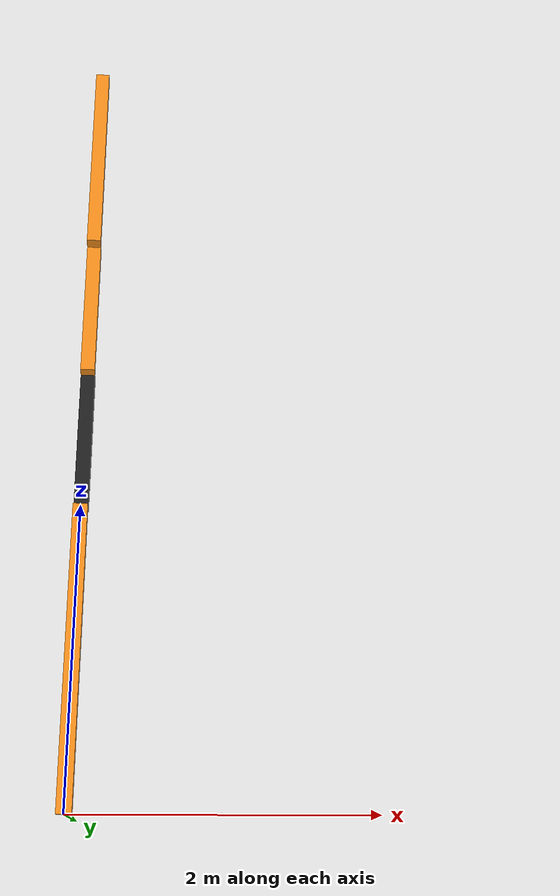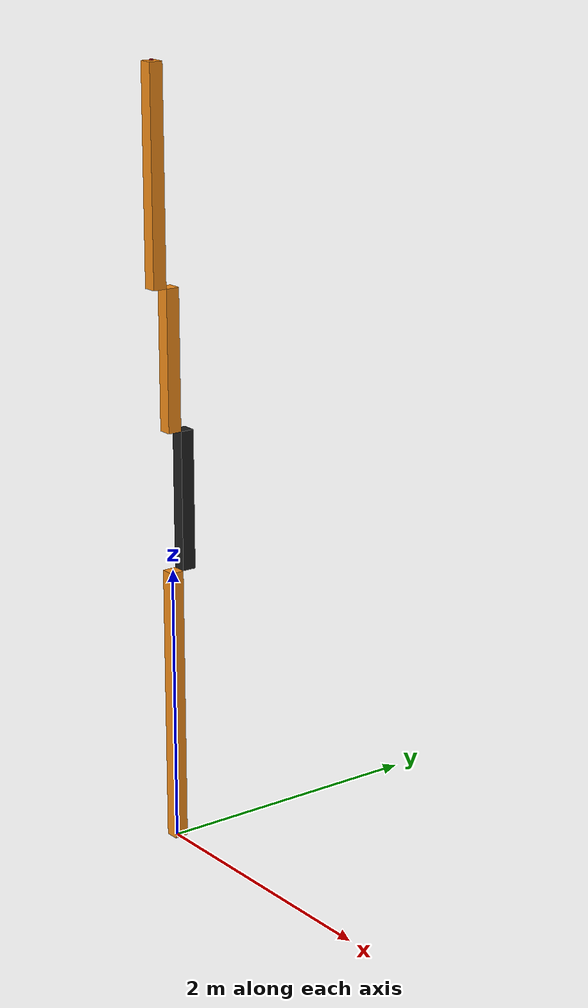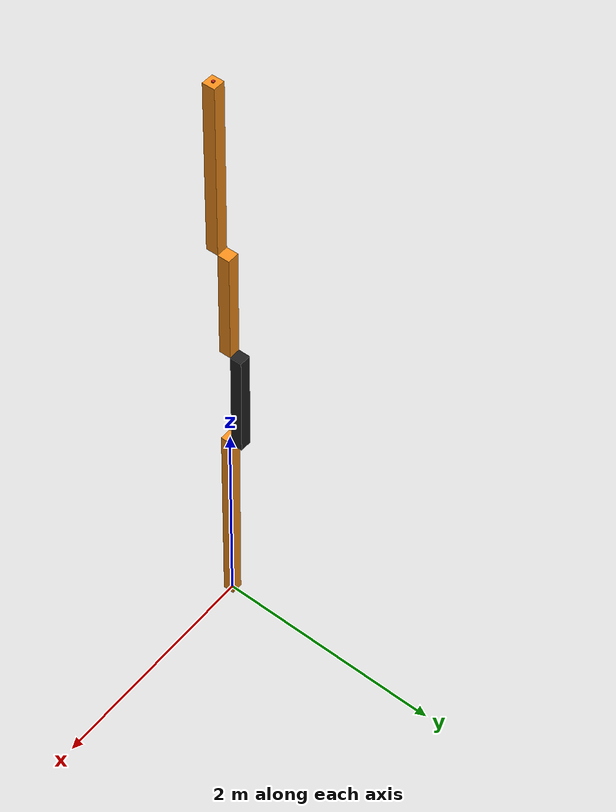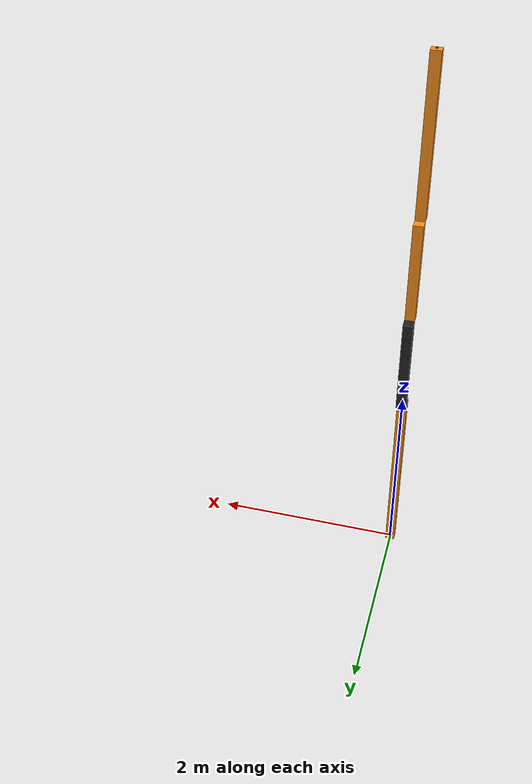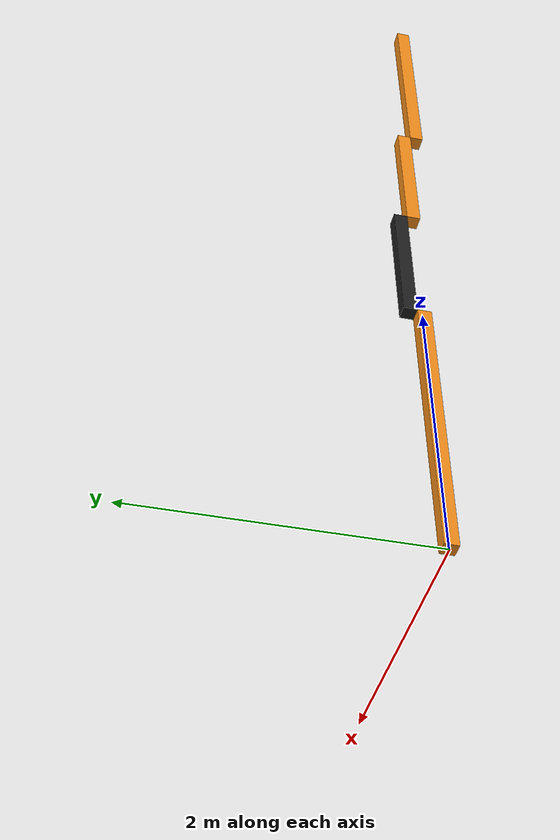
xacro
<?xml version="1.0"?>
<!-- Revolute-Revolute Manipulator -->
<robot name="three_dof_arm_4joints" xmlns:xacro="http://www.ros.org/wiki/xacro">

  <!-- Constants for robot dimensions -->
  <xacro:property name="PI" value="3.1415926535897931"/>
  <xacro:property name="mass" value="1" /> <!-- arbitrary value for mass -->
  <xacro:property name="width" value="0.1" /> <!-- Square dimensions (widthxwidth) of beams -->
  <xacro:property name="height1" value="2" /> <!-- Link 1 -->
  <xacro:property name="height2" value="1" /> <!-- Link 2 -->
  <xacro:property name="height3" value="1" /> <!-- Link 3 -->
  <xacro:property name="height4" value="1.5" /> <!-- Link 3 -->
  <xacro:property name="axel_offset" value="0.0" /> <!-- Space btw top of beam and the each joint -->

  <!-- Import all Gazebo-customization elements, including Gazebo colors -->
  <xacro:include filename="$(find three_dof_arm_description)/urdf/three_dof_arm_4joints.gazebo" />
  <!-- Import Rviz colors -->
  <xacro:include filename="$(find three_dof_arm_description)/urdf/materials.xacro" />

  <!-- Used for fixing robot to Gazebo 'base_link' -->
  <link name="world"/>

  <joint name="joint1" type="continuous">
    <parent link="world"/>
    <child link="link1"/>
    <origin xyz="0 0 0" rpy="0 0 0"/>
    <axis xyz="0 0 1"/>
    <dynamics damping="0.7"/>
  </joint>

  <!-- Base Link -->
  <link name="link1">
    <collision>
      <origin xyz="0 0 ${height1/2}" rpy="0 0 0"/>
      <geometry>
	<box size="${width} ${width} ${height1}"/>
      </geometry>
    </collision>

    <visual>
      <origin xyz="0 0 ${height1/2}" rpy="0 0 0"/>
      <geometry>
	<box size="${width} ${width} ${height1}"/>
      </geometry>
      <material name="orange"/>
    </visual>

    <inertial>
      <origin xyz="0 0 ${height1/2}" rpy="0 0 0"/>
      <mass value="${mass}"/>
      <inertia
	  ixx="${mass / 12.0 * (width*width + height1*height1)}" ixy="0.0" ixz="0.0"
	  iyy="${mass / 12.0 * (height1*height1 + width*width)}" iyz="0.0"
	  izz="${mass / 12.0 * (width*width + width*width)}"/>
    </inertial>
  </link>

  <joint name="joint2" type="continuous">
    <parent link="link1"/>
    <child link="link2"/>
    <origin xyz="0 ${width} ${height1 - axel_offset}" rpy="0 0 0"/>
    <axis xyz="0 1 0"/>
    <dynamics damping="0.7"/>
  </joint>

  <!-- Middle Link -->
  <link name="link2">
    <collision>
      <origin xyz="0 0 ${height2/2 - axel_offset}" rpy="0 0 0"/>
      <geometry>
	<box size="${width} ${width} ${height2}"/>
      </geometry>
    </collision>

    <visual>
      <origin xyz="0 0 ${height2/2 - axel_offset}" rpy="0 0 0"/>
      <geometry>
	<box size="${width} ${width} ${height2}"/>
      </geometry>
      <material name="black"/>
    </visual>

    <inertial>
      <origin xyz="0 0 ${height2/2 - axel_offset}" rpy="0 0 0"/>
      <mass value="${mass}"/>
      <inertia
	  ixx="${mass / 12.0 * (width*width + height2*height2)}" ixy="0.0" ixz="0.0"
	  iyy="${mass / 12.0 * (height2*height2 + width*width)}" iyz="0.0"
	  izz="${mass / 12.0 * (width*width + width*width)}"/>
    </inertial>
  </link>

  <joint name="joint3" type="continuous">
    <parent link="link2"/>
    <child link="link3"/>
    <origin xyz="0 -${width} ${height2 - axel_offset*2}" rpy="0 0 0"/>
    <axis xyz="0 1 0"/>
    <dynamics damping="0.7"/>
  </joint>

  <!-- Top Link -->
  <link name="link3">
    <collision>
      <origin xyz="0 0 ${height3/2 - axel_offset}" rpy="0 0 0"/>
      <geometry>
	<box size="${width} ${width} ${height3}"/>
      </geometry>
    </collision>

    <visual>
      <origin xyz="0 0 ${height3/2 - axel_offset}" rpy="0 0 0"/>
      <geometry>
	<box size="${width} ${width} ${height3}"/>
      </geometry>
      <material name="orange"/>
    </visual>

    <inertial>
      <origin xyz="0 0 ${height3/2 - axel_offset}" rpy="0 0 0"/>
      <mass value="${mass}"/>
      <inertia
	  ixx="${mass / 12.0 * (width*width + height3*height3)}" ixy="0.0" ixz="0.0"
	  iyy="${mass / 12.0 * (height3*height3 + width*width)}" iyz="0.0"
	  izz="${mass / 12.0 * (width*width + width*width)}"/>
    </inertial>
  </link>

  <joint name="joint4" type="continuous">
    <parent link="link3"/>
    <child link="link4"/>
    <origin xyz="0 -${width} ${height3 - axel_offset*2}" rpy="0 0 0"/>
    <axis xyz="0 1 0"/>
    <dynamics damping="0.7"/>
  </joint>

  <!-- Top Link -->
  <link name="link4">
    <collision>
      <origin xyz="0 0 ${height4/2 - axel_offset}" rpy="0 0 0"/>
      <geometry>
	<box size="${width} ${width} ${height3}"/>
      </geometry>
    </collision>

    <visual>
      <origin xyz="0 0 ${height4/2 - axel_offset}" rpy="0 0 0"/>
      <geometry>
	<box size="${width} ${width} ${height4}"/>
      </geometry>
      <material name="orange"/>
    </visual>

    <inertial>
      <origin xyz="0 0 ${height4/2 - axel_offset}" rpy="0 0 0"/>
      <mass value="${mass}"/>
      <inertia
	  ixx="${mass / 12.0 * (width*width + height3*height4)}" ixy="0.0" ixz="0.0"
	  iyy="${mass / 12.0 * (height4*height4 + width*width)}" iyz="0.0"
	  izz="${mass / 12.0 * (width*width + width*width)}"/>
    </inertial>
  </link>

  <!-- left end effector -->
  <joint name="joint_end" type="continuous">
    <origin xyz="0 0 ${height4 - axel_offset}" rpy="0 0 0"/>
    <parent link="link4"/>
    <child link="end_effector"/>
    <axis xyz="0 1 0"/>
    <dynamics damping="0.7"/>
  </joint>

  <!-- left end effector link -->
  <link name="end_effector">
    <visual>
      <origin xyz="0 0 0" rpy="0 0 0"/>
      <geometry>
        <box size="0.02 0.02 0.02" />
      </geometry>
      <material name="red"/>
    </visual>

    <inertial>
      <origin xyz="0.0 0.0 0.0" rpy="0 0 0"/>
      <mass value="0.001"/>
      <inertia ixx="1.0" ixy="0.0" ixz="0.0" iyy="1.0" iyz="0.0" izz="1.0" />
    </inertial>
  </link>

  <transmission name="tran1">
    <type>transmission_interface/SimpleTransmission</type>
    <joint name="joint1">
      <hardwareInterface>hardware_interface/EffortJointInterface</hardwareInterface>
    </joint>
    <actuator name="motor0">
      <hardwareInterface>hardware_interface/EffortJointInterface</hardwareInterface>
      <mechanicalReduction>1</mechanicalReduction>
    </actuator>
  </transmission>

  <transmission name="tran2">
    <type>transmission_interface/SimpleTransmission</type>
    <joint name="joint2">
      <hardwareInterface>hardware_interface/EffortJointInterface</hardwareInterface>
    </joint>
    <actuator name="motor1">
      <hardwareInterface>hardware_interface/EffortJointInterface</hardwareInterface>
      <mechanicalReduction>1</mechanicalReduction>
    </actuator>
  </transmission>

  <transmission name="tran3">
    <type>transmission_interface/SimpleTransmission</type>
    <joint name="joint3">
      <hardwareInterface>hardware_interface/EffortJointInterface</hardwareInterface>
    </joint>
    <actuator name="motor2">
      <hardwareInterface>hardware_interface/EffortJointInterface</hardwareInterface>
      <mechanicalReduction>1</mechanicalReduction>
    </actuator>
  </transmission>

  <transmission name="tran4">
    <type>transmission_interface/SimpleTransmission</type>
    <joint name="joint4">
      <hardwareInterface>hardware_interface/EffortJointInterface</hardwareInterface>
    </joint>
    <actuator name="motor3">
      <hardwareInterface>hardware_interface/EffortJointInterface</hardwareInterface>
      <mechanicalReduction>1</mechanicalReduction>
    </actuator>
  </transmission>

  <transmission name="tran_end">
    <type>transmission_interface/SimpleTransmission</type>
    <joint name="joint_end">
      <hardwareInterface>hardware_interface/EffortJointInterface</hardwareInterface>
    </joint>
    <actuator name="motorEnd">
      <hardwareInterface>hardware_interface/EffortJointInterface</hardwareInterface>
      <mechanicalReduction>1</mechanicalReduction>
    </actuator>
  </transmission>

</robot>
